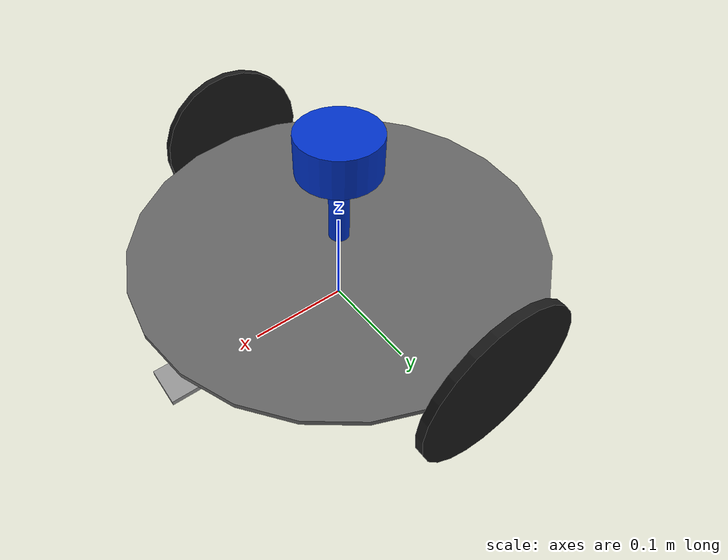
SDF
<?xml version="1.0" ?>
<sdf version="1.5">
  <model name="aubot">
  <pose>0.0 0.0 0.0 0.0 0.0 0.0</pose>

    <!-- ==================== Base Footprint ==================== -->
    <link name="base_footprint"/>

    <!-- ==================== Base Link (flat disk) ==================== -->
    <link name="base_link">
      <inertial>
        <pose>0 0 0.08 0 0 0</pose>
        <inertia>
          <ixx>1.5003e-02</ixx>
          <ixy>0</ixy>
          <ixz>0</ixz>
          <iyy>1.5003e-02</iyy>
          <iyz>0</iyz>
          <izz>3.0000e-02</izz>
        </inertia>
        <mass>1.5</mass>
      </inertial>

      <collision name="base_collision">
        <pose>0 0 0.08 0 0 0</pose>
        <geometry>
          <cylinder>
            <radius>0.20</radius>
            <length>0.005</length>
          </cylinder>
        </geometry>
      </collision>

      <visual name="base_visual">
        <pose>0 0 0.08 0 0 0</pose>
        <geometry>
          <cylinder>
            <radius>0.20</radius>
            <length>0.005</length>
          </cylinder>
        </geometry>
        <material>
          <ambient>0.4 0.4 0.4 1.0</ambient>
          <diffuse>0.4 0.4 0.4 1.0</diffuse>
        </material>
      </visual>
    </link>

    <!-- ==================== IMU Link ==================== -->
    <link name="imu_link">
      <sensor name="aubot_imu" type="imu">
        <always_on>true</always_on>
        <update_rate>200</update_rate>
        <imu>
          <angular_velocity>
            <x><noise type="gaussian"><mean>0.0</mean><stddev>2e-4</stddev></noise></x>
            <y><noise type="gaussian"><mean>0.0</mean><stddev>2e-4</stddev></noise></y>
            <z><noise type="gaussian"><mean>0.0</mean><stddev>2e-4</stddev></noise></z>
          </angular_velocity>
          <linear_acceleration>
            <x><noise type="gaussian"><mean>0.0</mean><stddev>1.7e-2</stddev></noise></x>
            <y><noise type="gaussian"><mean>0.0</mean><stddev>1.7e-2</stddev></noise></y>
            <z><noise type="gaussian"><mean>0.0</mean><stddev>1.7e-2</stddev></noise></z>
          </linear_acceleration>
        </imu>
        <plugin name="aubot_imu" filename="libgazebo_ros_imu_sensor.so">
          <ros>
            <remapping>~/out:=imu</remapping>
          </ros>
        </plugin>
      </sensor>
    </link>

    <!-- ==================== LiDAR (base_scan) ==================== -->
    <!-- RPLidarA1: 360°, 0.15-12m, 360 samples, 5.5Hz              -->
    <link name="base_scan">
      <inertial>
        <pose>0 0 0.18 0 0 0</pose>
        <inertia>
          <ixx>0.001</ixx>
          <ixy>0.000</ixy>
          <ixz>0.000</ixz>
          <iyy>0.001</iyy>
          <iyz>0.000</iyz>
          <izz>0.001</izz>
        </inertia>
        <mass>0.114</mass>
      </inertial>

      <collision name="lidar_collision">
        <pose>0 0 0.18 0 0 0</pose>
        <geometry>
          <cylinder>
            <radius>0.04</radius>
            <length>0.04</length>
          </cylinder>
        </geometry>
      </collision>

      <!-- LiDAR cylinder (blue) -->
      <visual name="lidar_visual">
        <pose>0 0 0.18 0 0 0</pose>
        <geometry>
          <cylinder>
            <radius>0.04</radius>
            <length>0.04</length>
          </cylinder>
        </geometry>
        <material>
          <ambient>0.0 0.2 0.8 1.0</ambient>
          <diffuse>0.0 0.2 0.8 1.0</diffuse>
        </material>
      </visual>

      <!-- Support column (blue) -->
      <visual name="lidar_support_visual">
        <pose>0 0 0.12125 0 0 0</pose>
        <geometry>
          <cylinder>
            <radius>0.01</radius>
            <length>0.0775</length>
          </cylinder>
        </geometry>
        <material>
          <ambient>0.0 0.2 0.8 1.0</ambient>
          <diffuse>0.0 0.2 0.8 1.0</diffuse>
        </material>
      </visual>

      <!-- RPLidarA1 sensor -->
      <sensor name="rplidar_a1" type="ray">
        <always_on>true</always_on>
        <visualize>true</visualize>
        <pose>0 0 0.18 0 0 0</pose>
        <update_rate>5.5</update_rate>
        <ray>
          <scan>
            <horizontal>
              <samples>360</samples>
              <resolution>1.000000</resolution>
              <min_angle>0.000000</min_angle>
              <max_angle>6.280000</max_angle>
            </horizontal>
          </scan>
          <range>
            <min>0.150000</min>
            <max>12.000000</max>
            <resolution>0.015000</resolution>
          </range>
          <noise>
            <type>gaussian</type>
            <mean>0.0</mean>
            <stddev>0.01</stddev>
          </noise>
        </ray>
        <plugin name="aubot_laserscan" filename="libgazebo_ros_ray_sensor.so">
          <ros>
            <remapping>~/out:=scan</remapping>
          </ros>
          <output_type>sensor_msgs/LaserScan</output_type>
          <frame_name>base_scan</frame_name>
        </plugin>
      </sensor>
    </link>

    <!-- ==================== Left Wheel ==================== -->
    <link name="wheel_left_link">
      <inertial>
        <pose>0 0.204 0.08 -1.5708 0 0</pose>
        <inertia>
          <ixx>1.6053e-04</ixx>
          <ixy>0</ixy>
          <ixz>0</ixz>
          <iyy>1.6053e-04</iyy>
          <iyz>0</iyz>
          <izz>3.2000e-04</izz>
        </inertia>
        <mass>0.1</mass>
      </inertial>

      <collision name="wheel_left_collision">
        <pose>0 0.204 0.08 -1.5708 0 0</pose>
        <geometry>
          <cylinder>
            <radius>0.08</radius>
            <length>0.008</length>
          </cylinder>
        </geometry>
        <surface>
          <friction>
            <ode>
              <mu>100000</mu>
              <mu2>100000</mu2>
              <fdir1>0 0 0</fdir1>
              <slip1>0.0</slip1>
              <slip2>0.0</slip2>
            </ode>
          </friction>
          <contact>
            <ode>
              <soft_cfm>0</soft_cfm>
              <soft_erp>0.2</soft_erp>
              <kp>1e+5</kp>
              <kd>1</kd>
              <max_vel>0.01</max_vel>
              <min_depth>0.001</min_depth>
            </ode>
          </contact>
        </surface>
      </collision>

      <visual name="wheel_left_visual">
        <pose>0 0.204 0.08 -1.5708 0 0</pose>
        <geometry>
          <cylinder>
            <radius>0.08</radius>
            <length>0.008</length>
          </cylinder>
        </geometry>
        <material>
          <ambient>0.1 0.1 0.1 1.0</ambient>
          <diffuse>0.1 0.1 0.1 1.0</diffuse>
        </material>
      </visual>
    </link>

    <!-- ==================== Right Wheel ==================== -->
    <link name="wheel_right_link">
      <inertial>
        <pose>0 -0.204 0.08 -1.5708 0 0</pose>
        <inertia>
          <ixx>1.6053e-04</ixx>
          <ixy>0</ixy>
          <ixz>0</ixz>
          <iyy>1.6053e-04</iyy>
          <iyz>0</iyz>
          <izz>3.2000e-04</izz>
        </inertia>
        <mass>0.1</mass>
      </inertial>

      <collision name="wheel_right_collision">
        <pose>0 -0.204 0.08 -1.5708 0 0</pose>
        <geometry>
          <cylinder>
            <radius>0.08</radius>
            <length>0.008</length>
          </cylinder>
        </geometry>
        <surface>
          <friction>
            <ode>
              <mu>100000</mu>
              <mu2>100000</mu2>
              <fdir1>0 0 0</fdir1>
              <slip1>0.0</slip1>
              <slip2>0.0</slip2>
            </ode>
          </friction>
          <contact>
            <ode>
              <soft_cfm>0</soft_cfm>
              <soft_erp>0.2</soft_erp>
              <kp>1e+5</kp>
              <kd>1</kd>
              <max_vel>0.01</max_vel>
              <min_depth>0.001</min_depth>
            </ode>
          </contact>
        </surface>
      </collision>

      <visual name="wheel_right_visual">
        <pose>0 -0.204 0.08 -1.5708 0 0</pose>
        <geometry>
          <cylinder>
            <radius>0.08</radius>
            <length>0.008</length>
          </cylinder>
        </geometry>
        <material>
          <ambient>0.1 0.1 0.1 1.0</ambient>
          <diffuse>0.1 0.1 0.1 1.0</diffuse>
        </material>
      </visual>
    </link>

    <!-- ==================== Caster Front ==================== -->
    <link name="caster_front_link">
      <pose>0.18 0 0.005 0 0 0</pose>
      <inertial>
        <mass>0.001</mass>
        <inertia>
          <ixx>0.00001</ixx>
          <ixy>0</ixy>
          <ixz>0</ixz>
          <iyy>0.00001</iyy>
          <iyz>0</iyz>
          <izz>0.00001</izz>
        </inertia>
      </inertial>
      <collision name="caster_front_collision">
        <geometry>
          <sphere>
            <radius>0.005</radius>
          </sphere>
        </geometry>
        <surface>
          <contact>
            <ode>
              <soft_cfm>0</soft_cfm>
              <soft_erp>0.2</soft_erp>
              <kp>1e+5</kp>
              <kd>1</kd>
              <max_vel>0.01</max_vel>
              <min_depth>0.001</min_depth>
            </ode>
          </contact>
        </surface>
      </collision>
      <visual name="caster_front_visual">
        <pose>0 0 -0.0025 0 0 0</pose>
        <geometry>
          <box>
            <size>0.04 0.04 0.005</size>
          </box>
        </geometry>
        <material>
          <ambient>0.6 0.6 0.6 1.0</ambient>
          <diffuse>0.6 0.6 0.6 1.0</diffuse>
        </material>
      </visual>
    </link>

    <!-- ==================== Caster Back ==================== -->
    <link name="caster_back_link">
      <pose>-0.18 0 0.005 0 0 0</pose>
      <inertial>
        <mass>0.001</mass>
        <inertia>
          <ixx>0.00001</ixx>
          <ixy>0</ixy>
          <ixz>0</ixz>
          <iyy>0.00001</iyy>
          <iyz>0</iyz>
          <izz>0.00001</izz>
        </inertia>
      </inertial>
      <collision name="caster_back_collision">
        <geometry>
          <sphere>
            <radius>0.005</radius>
          </sphere>
        </geometry>
        <surface>
          <contact>
            <ode>
              <soft_cfm>0</soft_cfm>
              <soft_erp>0.2</soft_erp>
              <kp>1e+5</kp>
              <kd>1</kd>
              <max_vel>0.01</max_vel>
              <min_depth>0.001</min_depth>
            </ode>
          </contact>
        </surface>
      </collision>
      <visual name="caster_back_visual">
        <pose>0 0 -0.0025 0 0 0</pose>
        <geometry>
          <box>
            <size>0.04 0.04 0.005</size>
          </box>
        </geometry>
        <material>
          <ambient>0.6 0.6 0.6 1.0</ambient>
          <diffuse>0.6 0.6 0.6 1.0</diffuse>
        </material>
      </visual>
    </link>

    <!-- ==================== Joints ==================== -->
    <joint name="base_joint" type="fixed">
      <parent>base_footprint</parent>
      <child>base_link</child>
      <pose>0 0 0.08 0 0 0</pose>
    </joint>

    <joint name="wheel_left_joint" type="revolute">
      <parent>base_link</parent>
      <child>wheel_left_link</child>
      <pose>0 0.204 0.08 -1.5708 0 0</pose>
      <axis>
        <xyz>0 0 1</xyz>
      </axis>
    </joint>

    <joint name="wheel_right_joint" type="revolute">
      <parent>base_link</parent>
      <child>wheel_right_link</child>
      <pose>0 -0.204 0.08 -1.5708 0 0</pose>
      <axis>
        <xyz>0 0 1</xyz>
      </axis>
    </joint>

    <joint name="caster_front_joint" type="ball">
      <parent>base_link</parent>
      <child>caster_front_link</child>
    </joint>

    <joint name="caster_back_joint" type="ball">
      <parent>base_link</parent>
      <child>caster_back_link</child>
    </joint>

    <joint name="imu_joint" type="fixed">
      <parent>base_link</parent>
      <child>imu_link</child>
      <pose>0 0 0.085 0 0 0</pose>
      <axis>
        <xyz>0 0 1</xyz>
      </axis>
    </joint>

    <joint name="scan_joint" type="fixed">
      <parent>base_link</parent>
      <child>base_scan</child>
      <pose>0 0 0.18 0 0 0</pose>
      <axis>
        <xyz>0 0 1</xyz>
      </axis>
    </joint>

    <!-- ==================== Diff Drive Plugin (Act 1.3) ==================== -->
    <plugin name="aubot_diff_drive" filename="libgazebo_ros_diff_drive.so">
      <ros>
      </ros>

      <update_rate>30</update_rate>

      <!-- Wheels -->
      <left_joint>wheel_left_joint</left_joint>
      <right_joint>wheel_right_joint</right_joint>

      <!-- Kinematics -->
      <wheel_separation>0.408</wheel_separation>
      <wheel_diameter>0.16</wheel_diameter>

      <!-- Limits -->
      <max_wheel_torque>20</max_wheel_torque>
      <max_wheel_acceleration>1.0</max_wheel_acceleration>

      <command_topic>cmd_vel</command_topic>

      <!-- Output -->
      <publish_odom>true</publish_odom>
      <publish_odom_tf>true</publish_odom_tf>
      <publish_wheel_tf>false</publish_wheel_tf>

      <odometry_topic>odom</odometry_topic>
      <odometry_frame>odom</odometry_frame>
      <robot_base_frame>base_footprint</robot_base_frame>
    </plugin>

    <!-- ==================== Joint State Publisher ==================== -->
    <plugin name="aubot_joint_state" filename="libgazebo_ros_joint_state_publisher.so">
      <ros>
        <remapping>~/out:=joint_states</remapping>
      </ros>
      <update_rate>30</update_rate>
      <joint_name>wheel_left_joint</joint_name>
      <joint_name>wheel_right_joint</joint_name>
    </plugin>

  </model>
</sdf>
